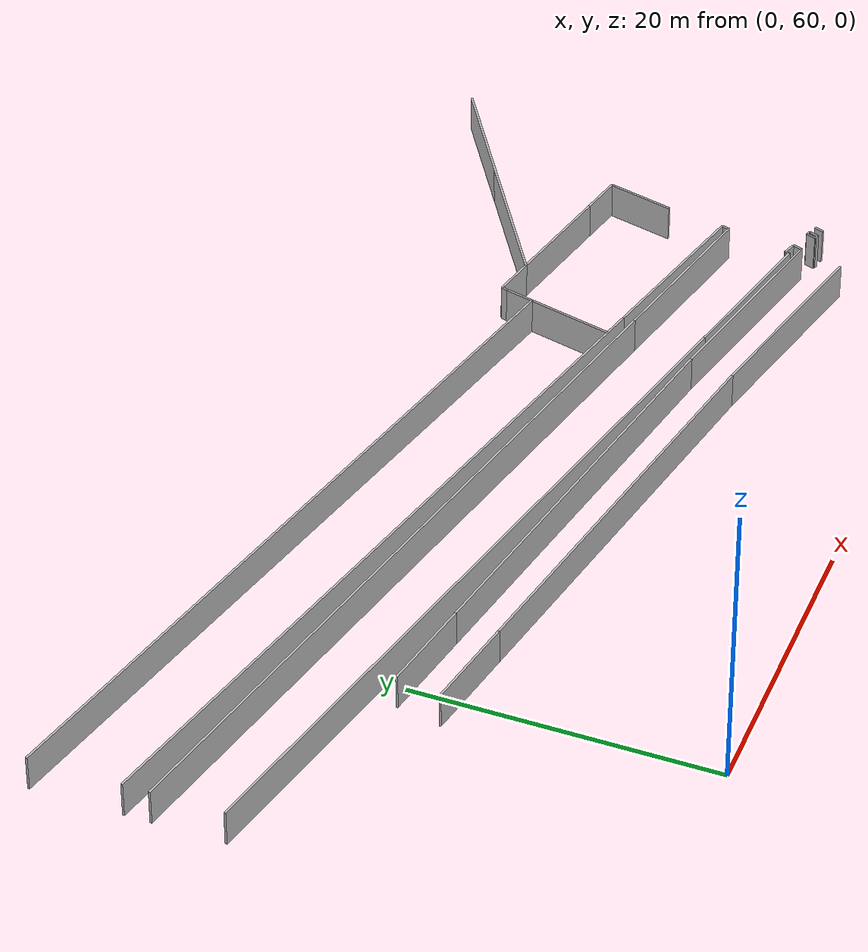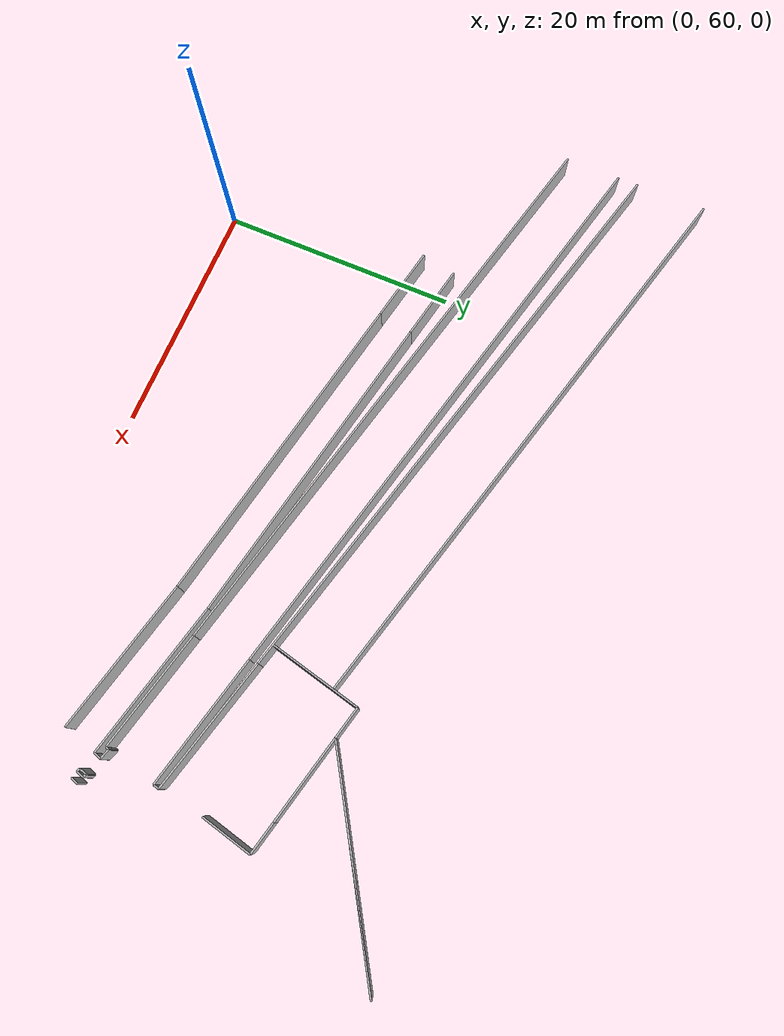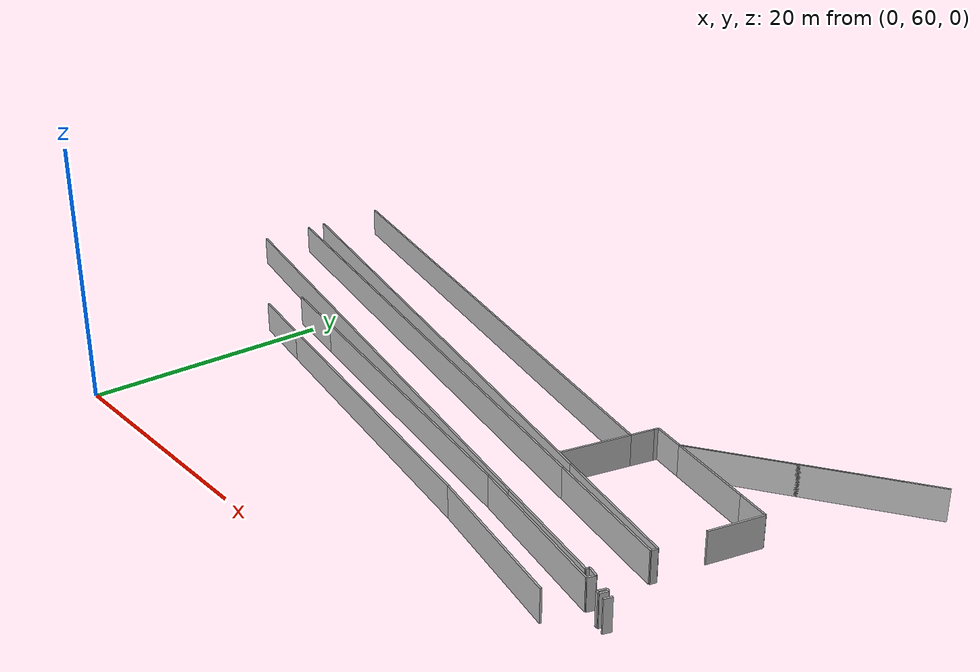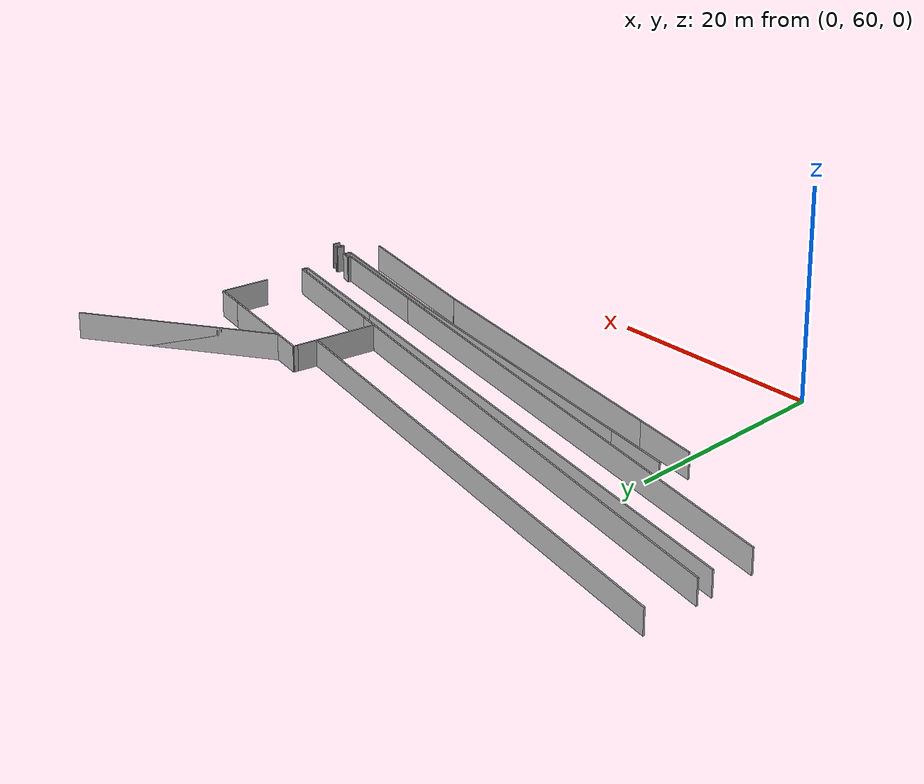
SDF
<sdf version="1.6">
 <model name="sps_0602">
  <static>1</static>
  <allow_auto_disable>0</allow_auto_disable>
  <link name="Wall9">
   <collision name="collision"><geometry><box><size>2.75977 0.15 2.5</size></box></geometry></collision>
   <visual name="visual">
    <geometry><box><size>2.75977 0.15 2.5</size></box></geometry>
    <transparency>0.0</transparency>
   </visual>
   <pose>35.9014 86.7282 1.25 0 -0 2.9133</pose>
  </link>
  <link name="Wall10">
   <collision name="collision"><geometry><box><size>0.636607 0.15 2.5</size></box></geometry></collision>
   <visual name="visual">
    <geometry><box><size>0.636607 0.15 2.5</size></box></geometry>
    <transparency>0.0</transparency>
   </visual>
   <pose>45.3445 70.6797 1.25 0 -0 1.2512</pose>
  </link>
  <link name="Wall11">
   <collision name="collision"><geometry><box><size>0.892807 0.15 2.5</size></box></geometry></collision>
   <visual name="visual">
    <geometry><box><size>0.892807 0.15 2.5</size></box></geometry>
    <transparency>0.0</transparency>
   </visual>
   <pose>45.0201 71.1203 1.25 0 0 -0.315222</pose>
  </link>
  <link name="Wall12">
   <collision name="collision"><geometry><box><size>0.270044 0.15 2.5</size></box></geometry></collision>
   <visual name="visual">
    <geometry><box><size>0.270044 0.15 2.5</size></box></geometry>
    <transparency>0.0</transparency>
   </visual>
   <pose>46.7982 69.8634 1.25 0 -0 2.82463</pose>
  </link>
  <link name="Wall13">
   <collision name="collision"><geometry><box><size>4.45016 0.15 2.5</size></box></geometry></collision>
   <visual name="visual">
    <geometry><box><size>4.45016 0.15 2.5</size></box></geometry>
    <transparency>0.0</transparency>
   </visual>
   <pose>46.7163 81.9306 1.25 0 0 -1.79919</pose>
  </link>
  <link name="Wall14">
   <collision name="collision"><geometry><box><size>0.646784 0.15 2.5</size></box></geometry></collision>
   <visual name="visual">
    <geometry><box><size>0.646784 0.15 2.5</size></box></geometry>
    <transparency>0.0</transparency>
   </visual>
   <pose>47.5969 69.9398 1.25 0 -0 1.25382</pose>
  </link>
  <link name="Wall17">
   <collision name="collision"><geometry><box><size>18.3065 0.15 2.5</size></box></geometry></collision>
   <visual name="visual">
    <geometry><box><size>18.3065 0.15 2.5</size></box></geometry>
    <transparency>0.0</transparency>
   </visual>
   <pose>45.0148 91.2553 1.25 0 0 -2.58452</pose>
  </link>
  <link name="Wall102">
   <collision name="collision"><geometry><box><size>0.299763 0.15 2.5</size></box></geometry></collision>
   <visual name="visual">
    <geometry><box><size>0.299763 0.15 2.5</size></box></geometry>
    <transparency>0.0</transparency>
   </visual>
   <pose>44.5618 71.1127 1.25 0 0 -1.79898</pose>
  </link>
  <link name="Wall106">
   <collision name="collision"><geometry><box><size>51.5639 0.15 2.5</size></box></geometry></collision>
   <visual name="visual">
    <geometry><box><size>51.5639 0.15 2.5</size></box></geometry>
    <transparency>0.0</transparency>
   </visual>
   <pose>9.46944 85.0621 1.25 0 0 -0.246916</pose>
  </link>
  <link name="Wall107">
   <collision name="collision"><geometry><box><size>11.5635 0.15 2.5</size></box></geometry></collision>
   <visual name="visual">
    <geometry><box><size>11.5635 0.15 2.5</size></box></geometry>
    <transparency>0.0</transparency>
   </visual>
   <pose>40.0759 77.3474 1.25 0 0 -0.246916</pose>
  </link>
  <link name="Wall108">
   <collision name="collision"><geometry><box><size>0.643851 0.15 2.5</size></box></geometry></collision>
   <visual name="visual">
    <geometry><box><size>0.643851 0.15 2.5</size></box></geometry>
    <transparency>0.0</transparency>
   </visual>
   <pose>47.0268 70.1272 1.25 0 -0 1.25402</pose>
  </link>
  <link name="Wall179">
   <collision name="collision"><geometry><box><size>51.1342 0.15 2.5</size></box></geometry></collision>
   <visual name="visual">
    <geometry><box><size>51.1342 0.15 2.5</size></box></geometry>
    <transparency>0.0</transparency>
   </visual>
   <pose>9.25314 91.0811 1.25 0 -0 2.89341</pose>
  </link>
  <link name="Wall183">
   <collision name="collision"><geometry><box><size>0.388056 0.15 2.5</size></box></geometry></collision>
   <visual name="visual">
    <geometry><box><size>0.388056 0.15 2.5</size></box></geometry>
    <transparency>0.0</transparency>
   </visual>
   <pose>34.5134 86.8515 1.25 0 0 -1.79911</pose>
  </link>
  <link name="Wall184">
   <collision name="collision"><geometry><box><size>1.91142 0.15 2.5</size></box></geometry></collision>
   <visual name="visual">
    <geometry><box><size>1.91142 0.15 2.5</size></box></geometry>
    <transparency>0.0</transparency>
   </visual>
   <pose>34.2531 85.7316 1.25 0 0 -1.79911</pose>
  </link>
  <link name="Wall185">
   <collision name="collision"><geometry><box><size>0.500124 0.15 2.5</size></box></geometry></collision>
   <visual name="visual">
    <geometry><box><size>0.500124 0.15 2.5</size></box></geometry>
    <transparency>0.0</transparency>
   </visual>
   <pose>45.6258 75.6907 1.25 0 0 -1.79878</pose>
  </link>
  <link name="Wall186">
   <collision name="collision"><geometry><box><size>2.74025 0.15 2.5</size></box></geometry></collision>
   <visual name="visual">
    <geometry><box><size>2.74025 0.15 2.5</size></box></geometry>
    <transparency>0.0</transparency>
   </visual>
   <pose>45.8856 84.4083 1.25 0 0 -0.228528</pose>
  </link>
  <link name="Wall339">
   <collision name="collision"><geometry><box><size>11.3954 0.15 2.5</size></box></geometry></collision>
   <visual name="visual">
    <geometry><box><size>11.3954 0.15 2.5</size></box></geometry>
    <transparency>0.0</transparency>
   </visual>
   <pose>40.0193 76.7364 1.25 0 -0 2.91334</pose>
  </link>
  <link name="Wall340">
   <collision name="collision"><geometry><box><size>51.3314 0.15 2.5</size></box></geometry></collision>
   <visual name="visual">
    <geometry><box><size>51.3314 0.15 2.5</size></box></geometry>
    <transparency>0.0</transparency>
   </visual>
   <pose>9.46944 83.8332 1.25 0 -0 2.91334</pose>
  </link>
  <link name="Wall423">
   <collision name="collision"><geometry><box><size>0.643271 0.15 2.5</size></box></geometry></collision>
   <visual name="visual">
    <geometry><box><size>0.643271 0.15 2.5</size></box></geometry>
    <transparency>0.0</transparency>
   </visual>
   <pose>46.7702 70.2111 1.25 0 -0 1.25373</pose>
  </link>
  <link name="Wall424">
   <collision name="collision"><geometry><box><size>0.269854 0.15 2.5</size></box></geometry></collision>
   <visual name="visual">
    <geometry><box><size>0.269854 0.15 2.5</size></box></geometry>
    <transparency>0.0</transparency>
   </visual>
   <pose>46.9987 70.4749 1.25 0 0 -0.314813</pose>
  </link>
  <link name="Wall512">
   <collision name="collision"><geometry><box><size>10.3277 0.15 2.5</size></box></geometry></collision>
   <visual name="visual">
    <geometry><box><size>10.3277 0.15 2.5</size></box></geometry>
    <transparency>0.0</transparency>
   </visual>
   <pose>39.4986 72.1382 1.25 0 -0 2.91274</pose>
  </link>
  <link name="Wall513">
   <collision name="collision"><geometry><box><size>51.3386 0.15 2.5</size></box></geometry></collision>
   <visual name="visual">
    <geometry><box><size>51.3386 0.15 2.5</size></box></geometry>
    <transparency>0.0</transparency>
   </visual>
   <pose>9.46944 79.133 1.25 0 -0 2.91274</pose>
  </link>
  <link name="Wall1408">
   <collision name="collision"><geometry><box><size>5.75188 0.15 2.5</size></box></geometry></collision>
   <visual name="visual">
    <geometry><box><size>5.75188 0.15 2.5</size></box></geometry>
    <transparency>0.0</transparency>
   </visual>
   <pose>33.3863 81.9993 1.25 0 0 -1.79898</pose>
  </link>
  <link name="Wall2508">
   <collision name="collision"><geometry><box><size>7.50025 0.15 2.5</size></box></geometry></collision>
   <visual name="visual">
    <geometry><box><size>7.50025 0.15 2.5</size></box></geometry>
    <transparency>0.0</transparency>
   </visual>
   <pose>40.8982 85.5671 1.25 0 -0 2.91327</pose>
  </link>
  <link name="Wall2509">
   <collision name="collision"><geometry><box><size>18.3065 0.15 2.5</size></box></geometry></collision>
   <visual name="visual">
    <geometry><box><size>18.3065 0.15 2.5</size></box></geometry>
    <transparency>0.0</transparency>
   </visual>
   <pose>45.0148 91.2553 1.25 0 -0 0.557076</pose>
  </link>
  <link name="Wall2725">
   <collision name="collision"><geometry><box><size>6.49419 0.15 2.5</size></box></geometry></collision>
   <visual name="visual">
    <geometry><box><size>6.49419 0.15 2.5</size></box></geometry>
    <transparency>0.0</transparency>
   </visual>
   <pose>1.06335 76.4301 1.25 0 0 -0.192817</pose>
  </link>
  <link name="Wall2726">
   <collision name="collision"><geometry><box><size>27.8071 0.15 2.5</size></box></geometry></collision>
   <visual name="visual">
    <geometry><box><size>27.8071 0.15 2.5</size></box></geometry>
    <transparency>0.0</transparency>
   </visual>
   <pose>17.8963 73.1442 1.25 0 0 -0.192776</pose>
  </link>
  <link name="Wall2727">
   <collision name="collision"><geometry><box><size>13.2336 0.15 2.5</size></box></geometry></collision>
   <visual name="visual">
    <geometry><box><size>13.2336 0.15 2.5</size></box></geometry>
    <transparency>0.0</transparency>
   </visual>
   <pose>37.9874 68.9834 1.25 0 0 -0.228235</pose>
  </link>
  <link name="Wall3568">
   <collision name="collision"><geometry><box><size>6.49395 0.15 2.5</size></box></geometry></collision>
   <visual name="visual">
    <geometry><box><size>6.49395 0.15 2.5</size></box></geometry>
    <transparency>0.0</transparency>
   </visual>
   <pose>1.63824 79.3745 1.25 0 0 -0.192824</pose>
  </link>
  <link name="Wall3569">
   <collision name="collision"><geometry><box><size>27.8603 0.15 2.5</size></box></geometry></collision>
   <visual name="visual">
    <geometry><box><size>27.8603 0.15 2.5</size></box></geometry>
    <transparency>0.0</transparency>
   </visual>
   <pose>18.4972 76.0835 1.25 0 0 -0.192776</pose>
  </link>
  <link name="Wall3570">
   <collision name="collision"><geometry><box><size>13.4233 0.15 2.5</size></box></geometry></collision>
   <visual name="visual">
    <geometry><box><size>13.4233 0.15 2.5</size></box></geometry>
    <transparency>0.0</transparency>
   </visual>
   <pose>38.7069 71.8961 1.25 0 0 -0.228237</pose>
  </link>
 </model>
</sdf>
